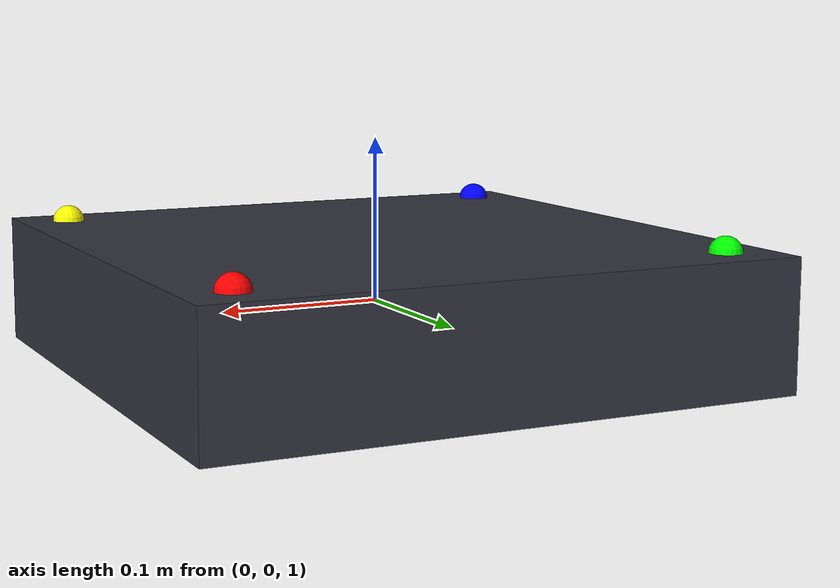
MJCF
<mujoco model="flyada_quadrotor">
  <!-- A minimal 6-DoF quadrotor for sim-to-sim transfer. Mass 1 kg, arm length 0.15 m,
       4 rotors mapping (thrust, roll/pitch/yaw torque) via the actuator gears. -->
  <option timestep="0.002" gravity="0 0 -9.81" integrator="RK4" iterations="20"/>

  <default>
    <geom rgba="0.6 0.6 0.7 1"/>
    <general ctrlrange="0 6" ctrllimited="true"/>
  </default>

  <worldbody>
    <light pos="0 0 5" dir="0 0 -1" diffuse="1 1 1"/>
    <geom type="plane" size="20 20 0.1" rgba="0.3 0.4 0.3 1"/>

    <body name="quad" pos="0 0 1.0">
      <freejoint/>
      <inertial pos="0 0 0" mass="1.0" diaginertia="0.005 0.005 0.009"/>
      <geom type="box" size="0.18 0.18 0.04" rgba="0.2 0.2 0.25 1"/>

      <site name="rotor_fr" pos=" 0.15  0.15 0.04" size="0.01" rgba="1 0 0 1"/>
      <site name="rotor_fl" pos="-0.15  0.15 0.04" size="0.01" rgba="0 1 0 1"/>
      <site name="rotor_rl" pos="-0.15 -0.15 0.04" size="0.01" rgba="0 0 1 1"/>
      <site name="rotor_rr" pos=" 0.15 -0.15 0.04" size="0.01" rgba="1 1 0 1"/>
    </body>
  </worldbody>

  <actuator>
    <general site="rotor_fr" gear="0 0 1 0 0 -0.02"/>
    <general site="rotor_fl" gear="0 0 1 0 0  0.02"/>
    <general site="rotor_rl" gear="0 0 1 0 0 -0.02"/>
    <general site="rotor_rr" gear="0 0 1 0 0  0.02"/>
  </actuator>
</mujoco>
